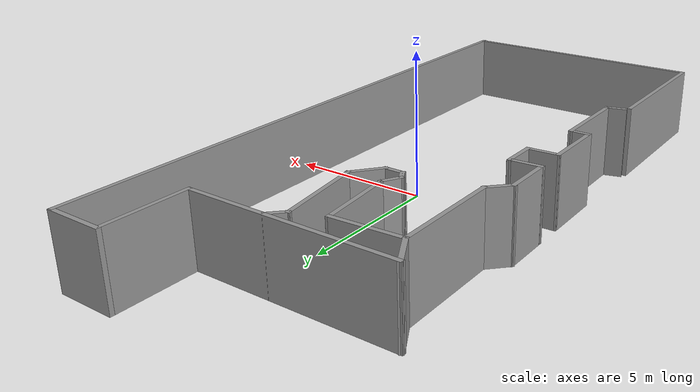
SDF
<?xml version='1.0'?>
<sdf version='1.7'>
  <model name='Restaurant-walls'>
    <pose>-0.455509 -0.336923 0 0 -0 0</pose>
    <link name='Wall_0'>
      <collision name='Wall_0_Collision'>
        <geometry>
          <box>
            <size>5.5 0.15 2.5</size>
          </box>
        </geometry>
        <pose>0 0 1.25 0 -0 0</pose>
      </collision>
      <visual name='Wall_0_Visual'>
        <pose>0 0 1.25 0 -0 0</pose>
        <geometry>
          <box>
            <size>5.5 0.15 2.5</size>
          </box>
        </geometry>
        <material>
          <script>
            <uri>file://media/materials/scripts/gazebo.material</uri>
            <name>Gazebo/Grey</name>
          </script>
          <ambient>1 1 1 1</ambient>
        </material>
        <meta>
          <layer>0</layer>
        </meta>
      </visual>
      <pose>-4.56759 -7.98241 0 0 -0 -1.5708</pose>
    </link>
    <link name='Wall_1'>
      <collision name='Wall_1_Collision'>
        <geometry>
          <box>
            <size>9.28518 0.15 2.5</size>
          </box>
        </geometry>
        <pose>0 0 1.25 0 -0 0</pose>
      </collision>
      <visual name='Wall_1_Visual'>
        <pose>0 0 1.25 0 -0 0</pose>
        <geometry>
          <box>
            <size>9.28518 0.15 2.5</size>
          </box>
        </geometry>
        <material>
          <script>
            <uri>file://media/materials/scripts/gazebo.material</uri>
            <name>Gazebo/Grey</name>
          </script>
          <ambient>1 1 1 1</ambient>
        </material>
        <meta>
          <layer>0</layer>
        </meta>
      </visual>
      <pose>-0 -10.6574 0 0 -0 0</pose>
    </link>
    <link name='Wall_10'>
      <collision name='Wall_10_Collision'>
        <geometry>
          <box>
            <size>1.75 0.15 2.5</size>
          </box>
        </geometry>
        <pose>0 0 1.25 0 -0 0</pose>
      </collision>
      <visual name='Wall_10_Visual'>
        <pose>0 0 1.25 0 -0 0</pose>
        <geometry>
          <box>
            <size>1.75 0.15 2.5</size>
          </box>
        </geometry>
        <material>
          <script>
            <uri>file://media/materials/scripts/gazebo.material</uri>
            <name>Gazebo/Grey</name>
          </script>
          <ambient>1 1 1 1</ambient>
        </material>
        <meta>
          <layer>0</layer>
        </meta>
      </visual>
      <pose>-4.46863 1.88892 0 0 -0 -1.5708</pose>
    </link>
    <link name='Wall_11'>
      <collision name='Wall_11_Collision'>
        <geometry>
          <box>
            <size>1.161 0.15 2.5</size>
          </box>
        </geometry>
        <pose>0 0 1.25 0 -0 0</pose>
      </collision>
      <visual name='Wall_11_Visual'>
        <pose>0 0 1.25 0 -0 0</pose>
        <geometry>
          <box>
            <size>1.161 0.15 2.5</size>
          </box>
        </geometry>
        <material>
          <script>
            <uri>file://media/materials/scripts/gazebo.material</uri>
            <name>Gazebo/Grey</name>
          </script>
          <ambient>1 1 1 1</ambient>
        </material>
        <meta>
          <layer>0</layer>
        </meta>
      </visual>
      <pose>-3.96383 1.11552 0 0 -0 0.052646</pose>
    </link>
    <link name='Wall_12'>
      <collision name='Wall_12_Collision'>
        <geometry>
          <box>
            <size>1.25 0.15 2.5</size>
          </box>
        </geometry>
        <pose>0 0 1.25 0 -0 0</pose>
      </collision>
      <visual name='Wall_12_Visual'>
        <pose>0 0 1.25 0 -0 0</pose>
        <geometry>
          <box>
            <size>1.25 0.15 2.5</size>
          </box>
        </geometry>
        <material>
          <script>
            <uri>file://media/materials/scripts/gazebo.material</uri>
            <name>Gazebo/Grey</name>
          </script>
          <ambient>1 1 1 1</ambient>
        </material>
        <meta>
          <layer>0</layer>
        </meta>
      </visual>
      <pose>-3.45903 0.592121 0 0 -0 -1.5708</pose>
    </link>
    <link name='Wall_13'>
      <collision name='Wall_13_Collision'>
        <geometry>
          <box>
            <size>1.161 0.15 2.5</size>
          </box>
        </geometry>
        <pose>0 0 1.25 0 -0 0</pose>
      </collision>
      <visual name='Wall_13_Visual'>
        <pose>0 0 1.25 0 -0 0</pose>
        <geometry>
          <box>
            <size>1.161 0.15 2.5</size>
          </box>
        </geometry>
        <material>
          <script>
            <uri>file://media/materials/scripts/gazebo.material</uri>
            <name>Gazebo/Grey</name>
          </script>
          <ambient>1 1 1 1</ambient>
        </material>
        <meta>
          <layer>0</layer>
        </meta>
      </visual>
      <pose>-3.96383 0.015521 0 0 -0 -3.08895</pose>
    </link>
    <link name='Wall_14'>
      <collision name='Wall_14_Collision'>
        <geometry>
          <box>
            <size>2.25 0.15 2.5</size>
          </box>
        </geometry>
        <pose>0 0 1.25 0 -0 0</pose>
      </collision>
      <visual name='Wall_14_Visual'>
        <pose>0 0 1.25 0 -0 0</pose>
        <geometry>
          <box>
            <size>2.25 0.15 2.5</size>
          </box>
        </geometry>
        <material>
          <script>
            <uri>file://media/materials/scripts/gazebo.material</uri>
            <name>Gazebo/Grey</name>
          </script>
          <ambient>1 1 1 1</ambient>
        </material>
        <meta>
          <layer>0</layer>
        </meta>
      </visual>
      <pose>-4.46863 -1.06108 0 0 -0 -1.5708</pose>
    </link>
    <link name='Wall_15'>
      <collision name='Wall_15_Collision'>
        <geometry>
          <box>
            <size>0.75 0.15 2.5</size>
          </box>
        </geometry>
        <pose>0 0 1.25 0 -0 0</pose>
      </collision>
      <visual name='Wall_15_Visual'>
        <pose>0 0 1.25 0 -0 0</pose>
        <geometry>
          <box>
            <size>0.75 0.15 2.5</size>
          </box>
        </geometry>
        <material>
          <script>
            <uri>file://media/materials/scripts/gazebo.material</uri>
            <name>Gazebo/Grey</name>
          </script>
          <ambient>1 1 1 1</ambient>
        </material>
        <meta>
          <layer>0</layer>
        </meta>
      </visual>
      <pose>-4.16863 -2.11108 0 0 -0 0</pose>
    </link>
    <link name='Wall_16'>
      <collision name='Wall_16_Collision'>
        <geometry>
          <box>
            <size>3 0.15 2.5</size>
          </box>
        </geometry>
        <pose>0 0 1.25 0 -0 0</pose>
      </collision>
      <visual name='Wall_16_Visual'>
        <pose>0 0 1.25 0 -0 0</pose>
        <geometry>
          <box>
            <size>3 0.15 2.5</size>
          </box>
        </geometry>
        <material>
          <script>
            <uri>file://media/materials/scripts/gazebo.material</uri>
            <name>Gazebo/Grey</name>
          </script>
          <ambient>1 1 1 1</ambient>
        </material>
        <meta>
          <layer>0</layer>
        </meta>
      </visual>
      <pose>-3.86863 -3.53608 0 0 -0 -1.5708</pose>
    </link>
    <link name='Wall_17'>
      <collision name='Wall_17_Collision'>
        <geometry>
          <box>
            <size>0.75 0.15 2.5</size>
          </box>
        </geometry>
        <pose>0 0 1.25 0 -0 0</pose>
      </collision>
      <visual name='Wall_17_Visual'>
        <pose>0 0 1.25 0 -0 0</pose>
        <geometry>
          <box>
            <size>0.75 0.15 2.5</size>
          </box>
        </geometry>
        <material>
          <script>
            <uri>file://media/materials/scripts/gazebo.material</uri>
            <name>Gazebo/Grey</name>
          </script>
          <ambient>1 1 1 1</ambient>
        </material>
        <meta>
          <layer>0</layer>
        </meta>
      </visual>
      <pose>-4.15841 -5.03873 0 0 -0 -2.87979</pose>
    </link>
    <link name='Wall_19'>
      <collision name='Wall_19_Collision'>
        <geometry>
          <box>
            <size>0.75 0.15 2.5</size>
          </box>
        </geometry>
        <pose>0 0 1.25 0 -0 0</pose>
      </collision>
      <visual name='Wall_19_Visual'>
        <pose>0 0 1.25 0 -0 0</pose>
        <geometry>
          <box>
            <size>0.75 0.15 2.5</size>
          </box>
        </geometry>
        <material>
          <script>
            <uri>file://media/materials/scripts/gazebo.material</uri>
            <name>Gazebo/Grey</name>
          </script>
          <ambient>1 1 1 1</ambient>
        </material>
        <meta>
          <layer>0</layer>
        </meta>
      </visual>
      <pose>-0.344756 7.60381 0 0 -0 -2.35619</pose>
    </link>
    <link name='Wall_20'>
      <collision name='Wall_20_Collision'>
        <geometry>
          <box>
            <size>3.0288 0.15 2.5</size>
          </box>
        </geometry>
        <pose>0 0 1.25 0 -0 0</pose>
      </collision>
      <visual name='Wall_20_Visual'>
        <pose>0 0 1.25 0 -0 0</pose>
        <geometry>
          <box>
            <size>3.0288 0.15 2.5</size>
          </box>
        </geometry>
        <material>
          <script>
            <uri>file://media/materials/scripts/gazebo.material</uri>
            <name>Gazebo/Grey</name>
          </script>
          <ambient>1 1 1 1</ambient>
        </material>
        <meta>
          <layer>0</layer>
        </meta>
      </visual>
      <pose>-0.344756 5.968 0 0 -0 -1.42288</pose>
    </link>
    <link name='Wall_21'>
      <collision name='Wall_21_Collision'>
        <geometry>
          <box>
            <size>1.24902 0.15 2.5</size>
          </box>
        </geometry>
        <pose>0 0 1.25 0 -0 0</pose>
      </collision>
      <visual name='Wall_21_Visual'>
        <pose>0 0 1.25 0 -0 0</pose>
        <geometry>
          <box>
            <size>1.24902 0.15 2.5</size>
          </box>
        </geometry>
        <material>
          <script>
            <uri>file://media/materials/scripts/gazebo.material</uri>
            <name>Gazebo/Grey</name>
          </script>
          <ambient>1 1 1 1</ambient>
        </material>
        <meta>
          <layer>0</layer>
        </meta>
      </visual>
      <pose>-0.484412 4.12217 0 0 -0 -2.26553</pose>
    </link>
    <link name='Wall_22'>
      <collision name='Wall_22_Collision'>
        <geometry>
          <box>
            <size>0.75 0.15 2.5</size>
          </box>
        </geometry>
        <pose>0 0 1.25 0 -0 0</pose>
      </collision>
      <visual name='Wall_22_Visual'>
        <pose>0 0 1.25 0 -0 0</pose>
        <geometry>
          <box>
            <size>0.75 0.15 2.5</size>
          </box>
        </geometry>
        <material>
          <script>
            <uri>file://media/materials/scripts/gazebo.material</uri>
            <name>Gazebo/Grey</name>
          </script>
          <ambient>1 1 1 1</ambient>
        </material>
        <meta>
          <layer>0</layer>
        </meta>
      </visual>
      <pose>-1.1362 3.70003 0 0 -0 3.14159</pose>
    </link>
    <link name='Wall_23'>
      <collision name='Wall_23_Collision'>
        <geometry>
          <box>
            <size>0.5 0.15 2.5</size>
          </box>
        </geometry>
        <pose>0 0 1.25 0 -0 0</pose>
      </collision>
      <visual name='Wall_23_Visual'>
        <pose>0 0 1.25 0 -0 0</pose>
        <geometry>
          <box>
            <size>0.5 0.15 2.5</size>
          </box>
        </geometry>
        <material>
          <script>
            <uri>file://media/materials/scripts/gazebo.material</uri>
            <name>Gazebo/Grey</name>
          </script>
          <ambient>1 1 1 1</ambient>
        </material>
        <meta>
          <layer>0</layer>
        </meta>
      </visual>
      <pose>-1.5237 3.85158 0 0 -0 2.0944</pose>
    </link>
    <link name='Wall_24'>
      <collision name='Wall_24_Collision'>
        <geometry>
          <box>
            <size>0.75 0.15 2.5</size>
          </box>
        </geometry>
        <pose>0 0 1.25 0 -0 0</pose>
      </collision>
      <visual name='Wall_24_Visual'>
        <pose>0 0 1.25 0 -0 0</pose>
        <geometry>
          <box>
            <size>0.75 0.15 2.5</size>
          </box>
        </geometry>
        <material>
          <script>
            <uri>file://media/materials/scripts/gazebo.material</uri>
            <name>Gazebo/Grey</name>
          </script>
          <ambient>1 1 1 1</ambient>
        </material>
        <meta>
          <layer>0</layer>
        </meta>
      </visual>
      <pose>-1.4612 4.26294 0 0 -0 1.0472</pose>
    </link>
    <link name='Wall_25'>
      <collision name='Wall_25_Collision'>
        <geometry>
          <box>
            <size>2.64804 0.15 2.5</size>
          </box>
        </geometry>
        <pose>0 0 1.25 0 -0 0</pose>
      </collision>
      <visual name='Wall_25_Visual'>
        <pose>0 0 1.25 0 -0 0</pose>
        <geometry>
          <box>
            <size>2.64804 0.15 2.5</size>
          </box>
        </geometry>
        <material>
          <script>
            <uri>file://media/materials/scripts/gazebo.material</uri>
            <name>Gazebo/Grey</name>
          </script>
          <ambient>1 1 1 1</ambient>
        </material>
        <meta>
          <layer>0</layer>
        </meta>
      </visual>
      <pose>-1.44308 5.76479 0 0 -0 1.67658</pose>
    </link>
    <link name='Wall_26'>
      <collision name='Wall_26_Collision'>
        <geometry>
          <box>
            <size>2.44561 0.15 2.5</size>
          </box>
        </geometry>
        <pose>0 0 1.25 0 -0 0</pose>
      </collision>
      <visual name='Wall_26_Visual'>
        <pose>0 0 1.25 0 -0 0</pose>
        <geometry>
          <box>
            <size>2.44561 0.15 2.5</size>
          </box>
        </geometry>
        <material>
          <script>
            <uri>file://media/materials/scripts/gazebo.material</uri>
            <name>Gazebo/Grey</name>
          </script>
          <ambient>1 1 1 1</ambient>
        </material>
        <meta>
          <layer>0</layer>
        </meta>
      </visual>
      <pose>-2.72127 6.9484 0 0 -0 -3.09066</pose>
    </link>
    <link name='Wall_3'>
      <collision name='Wall_3_Collision'>
        <geometry>
          <box>
            <size>21.5 0.15 2.5</size>
          </box>
        </geometry>
        <pose>0 0 1.25 0 -0 0</pose>
      </collision>
      <visual name='Wall_3_Visual'>
        <pose>0 0 1.25 0 -0 0</pose>
        <geometry>
          <box>
            <size>21.5 0.15 2.5</size>
          </box>
        </geometry>
        <material>
          <script>
            <uri>file://media/materials/scripts/gazebo.material</uri>
            <name>Gazebo/Grey</name>
          </script>
          <ambient>1 1 1 1</ambient>
        </material>
        <meta>
          <layer>0</layer>
        </meta>
      </visual>
      <pose>4.56759 -0.017589 0 0 -0 1.5708</pose>
    </link>
    <link name='Wall_4'>
      <collision name='Wall_4_Collision'>
        <geometry>
          <box>
            <size>2.03518 0.15 2.5</size>
          </box>
        </geometry>
        <pose>0 0 1.25 0 -0 0</pose>
      </collision>
      <visual name='Wall_4_Visual'>
        <pose>0 0 1.25 0 -0 0</pose>
        <geometry>
          <box>
            <size>2.03518 0.15 2.5</size>
          </box>
        </geometry>
        <material>
          <script>
            <uri>file://media/materials/scripts/gazebo.material</uri>
            <name>Gazebo/Grey</name>
          </script>
          <ambient>1 1 1 1</ambient>
        </material>
        <meta>
          <layer>0</layer>
        </meta>
      </visual>
      <pose>3.625 10.6926 0 0 -0 3.14159</pose>
    </link>
    <link name='Wall_5'>
      <collision name='Wall_5_Collision'>
        <geometry>
          <box>
            <size>3 0.15 2.5</size>
          </box>
        </geometry>
        <pose>0 0 1.25 0 -0 0</pose>
      </collision>
      <visual name='Wall_5_Visual'>
        <pose>0 0 1.25 0 -0 0</pose>
        <geometry>
          <box>
            <size>3 0.15 2.5</size>
          </box>
        </geometry>
        <material>
          <script>
            <uri>file://media/materials/scripts/gazebo.material</uri>
            <name>Gazebo/Grey</name>
          </script>
          <ambient>1 1 1 1</ambient>
        </material>
        <meta>
          <layer>0</layer>
        </meta>
      </visual>
      <pose>2.68241 9.26759 0 0 -0 -1.5708</pose>
    </link>
    <link name='Wall_6'>
      <collision name='Wall_6_Collision'>
        <geometry>
          <box>
            <size>7.25 0.15 2.5</size>
          </box>
        </geometry>
        <pose>0 0 1.25 0 -0 0</pose>
      </collision>
      <visual name='Wall_6_Visual'>
        <pose>0 0 1.25 0 -0 0</pose>
        <geometry>
          <box>
            <size>7.25 0.15 2.5</size>
          </box>
        </geometry>
        <material>
          <script>
            <uri>file://media/materials/scripts/gazebo.material</uri>
            <name>Gazebo/Grey</name>
          </script>
          <ambient>1 1 1 1</ambient>
        </material>
        <meta>
          <layer>0</layer>
        </meta>
      </visual>
      <pose>-0.86759 7.84259 0 0 -0 3.14159</pose>
    </link>
    <link name='Wall_7'>
      <collision name='Wall_7_Collision'>
        <geometry>
          <box>
            <size>1.25 0.15 2.5</size>
          </box>
        </geometry>
        <pose>0 0 1.25 0 -0 0</pose>
      </collision>
      <visual name='Wall_7_Visual'>
        <pose>0 0 1.25 0 -0 0</pose>
        <geometry>
          <box>
            <size>1.25 0.15 2.5</size>
          </box>
        </geometry>
        <material>
          <script>
            <uri>file://media/materials/scripts/gazebo.material</uri>
            <name>Gazebo/Grey</name>
          </script>
          <ambient>1 1 1 1</ambient>
        </material>
        <meta>
          <layer>0</layer>
        </meta>
      </visual>
      <pose>-4.14259 7.36628 0 0 -0 -1.0472</pose>
    </link>
    <link name='Wall_8'>
      <collision name='Wall_8_Collision'>
        <geometry>
          <box>
            <size>3.75 0.15 2.5</size>
          </box>
        </geometry>
        <pose>0 0 1.25 0 -0 0</pose>
      </collision>
      <visual name='Wall_8_Visual'>
        <pose>0 0 1.25 0 -0 0</pose>
        <geometry>
          <box>
            <size>3.75 0.15 2.5</size>
          </box>
        </geometry>
        <material>
          <script>
            <uri>file://media/materials/scripts/gazebo.material</uri>
            <name>Gazebo/Grey</name>
          </script>
          <ambient>1 1 1 1</ambient>
        </material>
        <meta>
          <layer>0</layer>
        </meta>
      </visual>
      <pose>-3.86759 5.08996 0 0 -0 -1.5708</pose>
    </link>
    <link name='Wall_9'>
      <collision name='Wall_9_Collision'>
        <geometry>
          <box>
            <size>1 0.15 2.5</size>
          </box>
        </geometry>
        <pose>0 0 1.25 0 -0 0</pose>
      </collision>
      <visual name='Wall_9_Visual'>
        <pose>0 0 1.25 0 -0 0</pose>
        <geometry>
          <box>
            <size>1 0.15 2.5</size>
          </box>
        </geometry>
        <material>
          <script>
            <uri>file://media/materials/scripts/gazebo.material</uri>
            <name>Gazebo/Grey</name>
          </script>
          <ambient>1 1 1 1</ambient>
        </material>
        <meta>
          <layer>0</layer>
        </meta>
      </visual>
      <pose>-4.16811 2.98944 0 0 -0 -2.35619</pose>
    </link>
    <static>1</static>
  </model>
</sdf>
